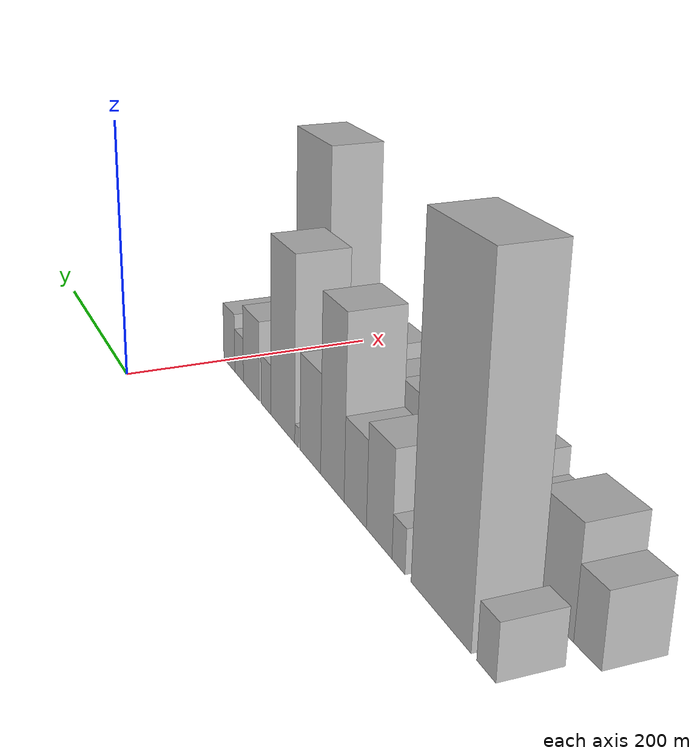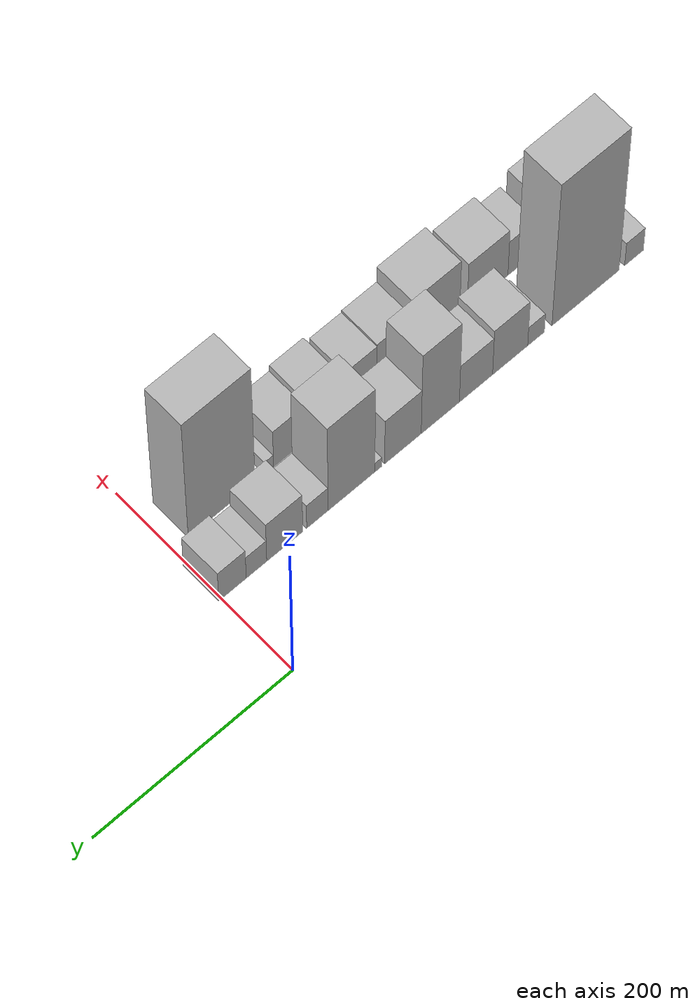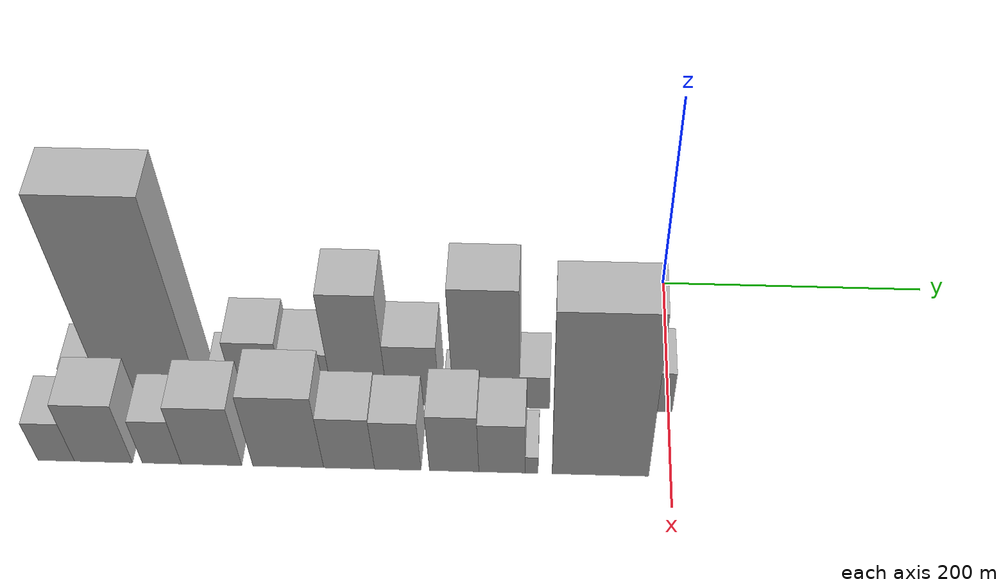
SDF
<sdf version="1.6">
 <world name="default">
  <model name="building_1">
   <static>1</static>
   <pose>100.0000 -429.9319 0 0.000000 0.000000 0.000000</pose>
   <link name="link">
    <pose>0 0 18.00 0 0 0</pose>
    <collision name="collision"><geometry><box><size>40.0000 20.1361 36.0000</size></box></geometry></collision>
    <visual name="visual">
     <cast_shadows>0</cast_shadows>
     <geometry><box><size>40.0000 20.1361 36.0000</size></box></geometry>
     <material>
      <script>
       <uri>model://HANNAS_wall/materials/scripts</uri>
       <uri>model://HANNAS_wall/materials/textures</uri>
       <name>vrc/HANNAS_wall</name>
      </script>
     </material>
    </visual>
   </link>
  </model>
  <model name="building_2">
   <static>1</static>
   <pose>100.0000 -378.0433 0 0.000000 0.000000 0.000000</pose>
   <link name="link">
    <pose>0 0 111.00 0 0 0</pose>
    <collision name="collision"><geometry><box><size>40.0000 71.6411 222.0000</size></box></geometry></collision>
    <visual name="visual">
     <cast_shadows>0</cast_shadows>
     <geometry><box><size>40.0000 71.6411 222.0000</size></box></geometry>
     <material>
      <script>
       <uri>model://HANNAS_wall/materials/scripts</uri>
       <uri>model://HANNAS_wall/materials/textures</uri>
       <name>vrc/HANNAS_wall</name>
      </script>
     </material>
    </visual>
   </link>
  </model>
  <model name="building_3">
   <static>1</static>
   <pose>100.0000 -325.3569 0 0.000000 0.000000 0.000000</pose>
   <link name="link">
    <pose>0 0 15.00 0 0 0</pose>
    <collision name="collision"><geometry><box><size>40.0000 17.7317 30.0000</size></box></geometry></collision>
    <visual name="visual">
     <cast_shadows>0</cast_shadows>
     <geometry><box><size>40.0000 17.7317 30.0000</size></box></geometry>
     <material>
      <script>
       <uri>model://HANNAS_wall/materials/scripts</uri>
       <uri>model://HANNAS_wall/materials/textures</uri>
       <name>vrc/HANNAS_wall</name>
      </script>
     </material>
    </visual>
   </link>
  </model>
  <model name="building_4">
   <static>1</static>
   <pose>100.0000 -297.9642 0 0.000000 0.000000 0.000000</pose>
   <link name="link">
    <pose>0 0 36.00 0 0 0</pose>
    <collision name="collision"><geometry><box><size>40.0000 37.0537 72.0000</size></box></geometry></collision>
    <visual name="visual">
     <cast_shadows>0</cast_shadows>
     <geometry><box><size>40.0000 37.0537 72.0000</size></box></geometry>
     <material>
      <script>
       <uri>model://HANNAS_wall/materials/scripts</uri>
       <uri>model://HANNAS_wall/materials/textures</uri>
       <name>vrc/HANNAS_wall</name>
      </script>
     </material>
    </visual>
   </link>
  </model>
  <model name="building_5">
   <static>1</static>
   <pose>100.0000 -262.0159 0 0.000000 0.000000 0.000000</pose>
   <link name="link">
    <pose>0 0 30.00 0 0 0</pose>
    <collision name="collision"><geometry><box><size>40.0000 34.8430 60.0000</size></box></geometry></collision>
    <visual name="visual">
     <cast_shadows>0</cast_shadows>
     <geometry><box><size>40.0000 34.8430 60.0000</size></box></geometry>
     <material>
      <script>
       <uri>model://HANNAS_wall/materials/scripts</uri>
       <uri>model://HANNAS_wall/materials/textures</uri>
       <name>vrc/HANNAS_wall</name>
      </script>
     </material>
    </visual>
   </link>
  </model>
  <model name="building_6">
   <static>1</static>
   <pose>100.0000 -224.6517 0 0.000000 0.000000 0.000000</pose>
   <link name="link">
    <pose>0 0 64.50 0 0 0</pose>
    <collision name="collision"><geometry><box><size>40.0000 39.8854 129.0000</size></box></geometry></collision>
    <visual name="visual">
     <cast_shadows>0</cast_shadows>
     <geometry><box><size>40.0000 39.8854 129.0000</size></box></geometry>
     <material>
      <script>
       <uri>model://HANNAS_wall/materials/scripts</uri>
       <uri>model://HANNAS_wall/materials/textures</uri>
       <name>vrc/HANNAS_wall</name>
      </script>
     </material>
    </visual>
   </link>
  </model>
  <model name="building_7">
   <static>1</static>
   <pose>100.0000 -185.7584 0 0.000000 0.000000 0.000000</pose>
   <link name="link">
    <pose>0 0 36.00 0 0 0</pose>
    <collision name="collision"><geometry><box><size>40.0000 37.9011 72.0000</size></box></geometry></collision>
    <visual name="visual">
     <cast_shadows>0</cast_shadows>
     <geometry><box><size>40.0000 37.9011 72.0000</size></box></geometry>
     <material>
      <script>
       <uri>model://HANNAS_wall/materials/scripts</uri>
       <uri>model://HANNAS_wall/materials/textures</uri>
       <name>vrc/HANNAS_wall</name>
      </script>
     </material>
    </visual>
   </link>
  </model>
  <model name="building_8">
   <static>1</static>
   <pose>100.0000 -160.2678 0 0.000000 0.000000 0.000000</pose>
   <link name="link">
    <pose>0 0 7.50 0 0 0</pose>
    <collision name="collision"><geometry><box><size>40.0000 7.0802 15.0000</size></box></geometry></collision>
    <visual name="visual">
     <cast_shadows>0</cast_shadows>
     <geometry><box><size>40.0000 7.0802 15.0000</size></box></geometry>
     <material>
      <script>
       <uri>model://HANNAS_wall/materials/scripts</uri>
       <uri>model://HANNAS_wall/materials/textures</uri>
       <name>vrc/HANNAS_wall</name>
      </script>
     </material>
    </visual>
   </link>
  </model>
  <model name="building_9">
   <static>1</static>
   <pose>100.0000 -132.5861 0 0.000000 0.000000 0.000000</pose>
   <link name="link">
    <pose>0 0 69.00 0 0 0</pose>
    <collision name="collision"><geometry><box><size>40.0000 48.2832 138.0000</size></box></geometry></collision>
    <visual name="visual">
     <cast_shadows>0</cast_shadows>
     <geometry><box><size>40.0000 48.2832 138.0000</size></box></geometry>
     <material>
      <script>
       <uri>model://HANNAS_wall/materials/scripts</uri>
       <uri>model://HANNAS_wall/materials/textures</uri>
       <name>vrc/HANNAS_wall</name>
      </script>
     </material>
    </visual>
   </link>
  </model>
  <model name="building_10">
   <static>1</static>
   <pose>100.0000 -97.4779 0 0.000000 0.000000 0.000000</pose>
   <link name="link">
    <pose>0 0 19.50 0 0 0</pose>
    <collision name="collision"><geometry><box><size>40.0000 21.9331 39.0000</size></box></geometry></collision>
    <visual name="visual">
     <cast_shadows>0</cast_shadows>
     <geometry><box><size>40.0000 21.9331 39.0000</size></box></geometry>
     <material>
      <script>
       <uri>model://HANNAS_wall/materials/scripts</uri>
       <uri>model://HANNAS_wall/materials/textures</uri>
       <name>vrc/HANNAS_wall</name>
      </script>
     </material>
    </visual>
   </link>
  </model>
  <model name="building_11">
   <static>1</static>
   <pose>100.0000 -64.1464 0 0.000000 0.000000 0.000000</pose>
   <link name="link">
    <pose>0 0 31.50 0 0 0</pose>
    <collision name="collision"><geometry><box><size>40.0000 36.7299 63.0000</size></box></geometry></collision>
    <visual name="visual">
     <cast_shadows>0</cast_shadows>
     <geometry><box><size>40.0000 36.7299 63.0000</size></box></geometry>
     <material>
      <script>
       <uri>model://HANNAS_wall/materials/scripts</uri>
       <uri>model://HANNAS_wall/materials/textures</uri>
       <name>vrc/HANNAS_wall</name>
      </script>
     </material>
    </visual>
   </link>
  </model>
  <model name="building_12">
   <static>1</static>
   <pose>100.0000 -35.3533 0 0.000000 0.000000 0.000000</pose>
   <link name="link">
    <pose>0 0 18.00 0 0 0</pose>
    <collision name="collision"><geometry><box><size>40.0000 20.8563 36.0000</size></box></geometry></collision>
    <visual name="visual">
     <cast_shadows>0</cast_shadows>
     <geometry><box><size>40.0000 20.8563 36.0000</size></box></geometry>
     <material>
      <script>
       <uri>model://HANNAS_wall/materials/scripts</uri>
       <uri>model://HANNAS_wall/materials/textures</uri>
       <name>vrc/HANNAS_wall</name>
      </script>
     </material>
    </visual>
   </link>
  </model>
  <model name="building_13">
   <static>1</static>
   <pose>100.0000 -11.0019 0 0.000000 0.000000 0.000000</pose>
   <link name="link">
    <pose>0 0 24.00 0 0 0</pose>
    <collision name="collision"><geometry><box><size>40.0000 27.8465 48.0000</size></box></geometry></collision>
    <visual name="visual">
     <cast_shadows>0</cast_shadows>
     <geometry><box><size>40.0000 27.8465 48.0000</size></box></geometry>
     <material>
      <script>
       <uri>model://HANNAS_wall/materials/scripts</uri>
       <uri>model://HANNAS_wall/materials/textures</uri>
       <name>vrc/HANNAS_wall</name>
      </script>
     </material>
    </visual>
   </link>
  </model>
  <model name="building_24">
   <static>1</static>
   <pose>155.0000 -436.9475 0 0.000000 0.000000 0.000000</pose>
   <link name="link">
    <pose>0 0 24.00 0 0 0</pose>
    <collision name="collision"><geometry><box><size>40.0000 26.1049 48.0000</size></box></geometry></collision>
    <visual name="visual">
     <cast_shadows>0</cast_shadows>
     <geometry><box><size>40.0000 26.1049 48.0000</size></box></geometry>
     <material>
      <script>
       <uri>model://HANNAS_wall/materials/scripts</uri>
       <uri>model://HANNAS_wall/materials/textures</uri>
       <name>vrc/HANNAS_wall</name>
      </script>
     </material>
    </visual>
   </link>
  </model>
  <model name="building_25">
   <static>1</static>
   <pose>155.0000 -403.1090 0 0.000000 0.000000 0.000000</pose>
   <link name="link">
    <pose>0 0 36.00 0 0 0</pose>
    <collision name="collision"><geometry><box><size>40.0000 41.5721 72.0000</size></box></geometry></collision>
    <visual name="visual">
     <cast_shadows>0</cast_shadows>
     <geometry><box><size>40.0000 41.5721 72.0000</size></box></geometry>
     <material>
      <script>
       <uri>model://HANNAS_wall/materials/scripts</uri>
       <uri>model://HANNAS_wall/materials/textures</uri>
       <name>vrc/HANNAS_wall</name>
      </script>
     </material>
    </visual>
   </link>
  </model>
  <model name="building_26">
   <static>1</static>
   <pose>155.0000 -361.3694 0 0.000000 0.000000 0.000000</pose>
   <link name="link">
    <pose>0 0 27.00 0 0 0</pose>
    <collision name="collision"><geometry><box><size>40.0000 27.9071 54.0000</size></box></geometry></collision>
    <visual name="visual">
     <cast_shadows>0</cast_shadows>
     <geometry><box><size>40.0000 27.9071 54.0000</size></box></geometry>
     <material>
      <script>
       <uri>model://HANNAS_wall/materials/scripts</uri>
       <uri>model://HANNAS_wall/materials/textures</uri>
       <name>vrc/HANNAS_wall</name>
      </script>
     </material>
    </visual>
   </link>
  </model>
  <model name="building_27">
   <static>1</static>
   <pose>155.0000 -325.8531 0 0.000000 0.000000 0.000000</pose>
   <link name="link">
    <pose>0 0 36.00 0 0 0</pose>
    <collision name="collision"><geometry><box><size>40.0000 43.1255 72.0000</size></box></geometry></collision>
    <visual name="visual">
     <cast_shadows>0</cast_shadows>
     <geometry><box><size>40.0000 43.1255 72.0000</size></box></geometry>
     <material>
      <script>
       <uri>model://HANNAS_wall/materials/scripts</uri>
       <uri>model://HANNAS_wall/materials/textures</uri>
       <name>vrc/HANNAS_wall</name>
      </script>
     </material>
    </visual>
   </link>
  </model>
  <model name="building_28">
   <static>1</static>
   <pose>155.0000 -271.0598 0 0.000000 0.000000 0.000000</pose>
   <link name="link">
    <pose>0 0 43.50 0 0 0</pose>
    <collision name="collision"><geometry><box><size>40.0000 50.4610 87.0000</size></box></geometry></collision>
    <visual name="visual">
     <cast_shadows>0</cast_shadows>
     <geometry><box><size>40.0000 50.4610 87.0000</size></box></geometry>
     <material>
      <script>
       <uri>model://HANNAS_wall/materials/scripts</uri>
       <uri>model://HANNAS_wall/materials/textures</uri>
       <name>vrc/HANNAS_wall</name>
      </script>
     </material>
    </visual>
   </link>
  </model>
  <model name="building_29">
   <static>1</static>
   <pose>155.0000 -227.7071 0 0.000000 0.000000 0.000000</pose>
   <link name="link">
    <pose>0 0 31.50 0 0 0</pose>
    <collision name="collision"><geometry><box><size>40.0000 36.2444 63.0000</size></box></geometry></collision>
    <visual name="visual">
     <cast_shadows>0</cast_shadows>
     <geometry><box><size>40.0000 36.2444 63.0000</size></box></geometry>
     <material>
      <script>
       <uri>model://HANNAS_wall/materials/scripts</uri>
       <uri>model://HANNAS_wall/materials/textures</uri>
       <name>vrc/HANNAS_wall</name>
      </script>
     </material>
    </visual>
   </link>
  </model>
  <model name="building_30">
   <static>1</static>
   <pose>155.0000 -193.0817 0 0.000000 0.000000 0.000000</pose>
   <link name="link">
    <pose>0 0 30.00 0 0 0</pose>
    <collision name="collision"><geometry><box><size>40.0000 33.0066 60.0000</size></box></geometry></collision>
    <visual name="visual">
     <cast_shadows>0</cast_shadows>
     <geometry><box><size>40.0000 33.0066 60.0000</size></box></geometry>
     <material>
      <script>
       <uri>model://HANNAS_wall/materials/scripts</uri>
       <uri>model://HANNAS_wall/materials/textures</uri>
       <name>vrc/HANNAS_wall</name>
      </script>
     </material>
    </visual>
   </link>
  </model>
  <model name="building_31">
   <static>1</static>
   <pose>155.0000 -153.0790 0 0.000000 0.000000 0.000000</pose>
   <link name="link">
    <pose>0 0 34.50 0 0 0</pose>
    <collision name="collision"><geometry><box><size>40.0000 34.9989 69.0000</size></box></geometry></collision>
    <visual name="visual">
     <cast_shadows>0</cast_shadows>
     <geometry><box><size>40.0000 34.9989 69.0000</size></box></geometry>
     <material>
      <script>
       <uri>model://HANNAS_wall/materials/scripts</uri>
       <uri>model://HANNAS_wall/materials/textures</uri>
       <name>vrc/HANNAS_wall</name>
      </script>
     </material>
    </visual>
   </link>
  </model>
  <model name="building_32">
   <static>1</static>
   <pose>155.0000 -119.0999 0 0.000000 0.000000 0.000000</pose>
   <link name="link">
    <pose>0 0 30.00 0 0 0</pose>
    <collision name="collision"><geometry><box><size>40.0000 32.9592 60.0000</size></box></geometry></collision>
    <visual name="visual">
     <cast_shadows>0</cast_shadows>
     <geometry><box><size>40.0000 32.9592 60.0000</size></box></geometry>
     <material>
      <script>
       <uri>model://HANNAS_wall/materials/scripts</uri>
       <uri>model://HANNAS_wall/materials/textures</uri>
       <name>vrc/HANNAS_wall</name>
      </script>
     </material>
    </visual>
   </link>
  </model>
  <model name="building_33">
   <static>1</static>
   <pose>155.0000 -98.1310 0 0.000000 0.000000 0.000000</pose>
   <link name="link">
    <pose>0 0 10.50 0 0 0</pose>
    <collision name="collision"><geometry><box><size>40.0000 8.9787 21.0000</size></box></geometry></collision>
    <visual name="visual">
     <cast_shadows>0</cast_shadows>
     <geometry><box><size>40.0000 8.9787 21.0000</size></box></geometry>
     <material>
      <script>
       <uri>model://HANNAS_wall/materials/scripts</uri>
       <uri>model://HANNAS_wall/materials/textures</uri>
       <name>vrc/HANNAS_wall</name>
      </script>
     </material>
    </visual>
   </link>
  </model>
  <model name="building_34">
   <static>1</static>
   <pose>155.0000 -49.5537 0 0.000000 0.000000 0.000000</pose>
   <link name="link">
    <pose>0 0 94.50 0 0 0</pose>
    <collision name="collision"><geometry><box><size>40.0000 68.1760 189.0000</size></box></geometry></collision>
    <visual name="visual">
     <cast_shadows>0</cast_shadows>
     <geometry><box><size>40.0000 68.1760 189.0000</size></box></geometry>
     <material>
      <script>
       <uri>model://HANNAS_wall/materials/scripts</uri>
       <uri>model://HANNAS_wall/materials/textures</uri>
       <name>vrc/HANNAS_wall</name>
      </script>
     </material>
    </visual>
   </link>
  </model>
 </world>
</sdf>
